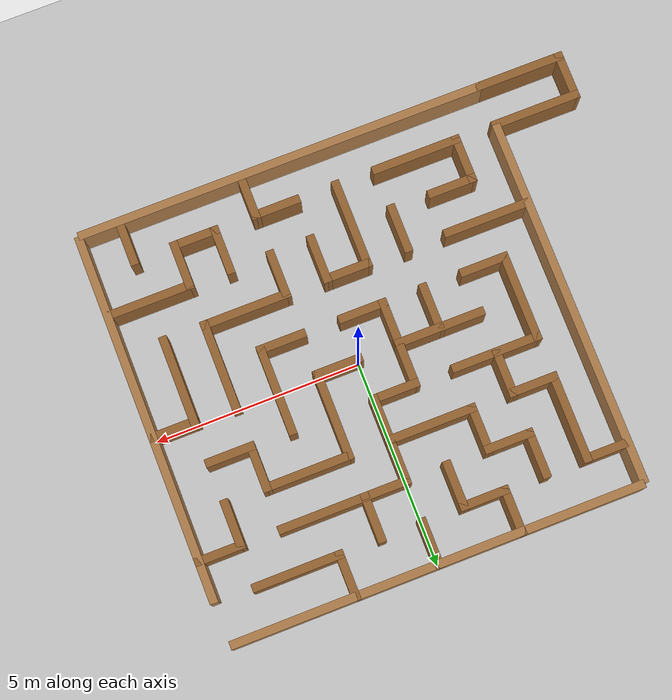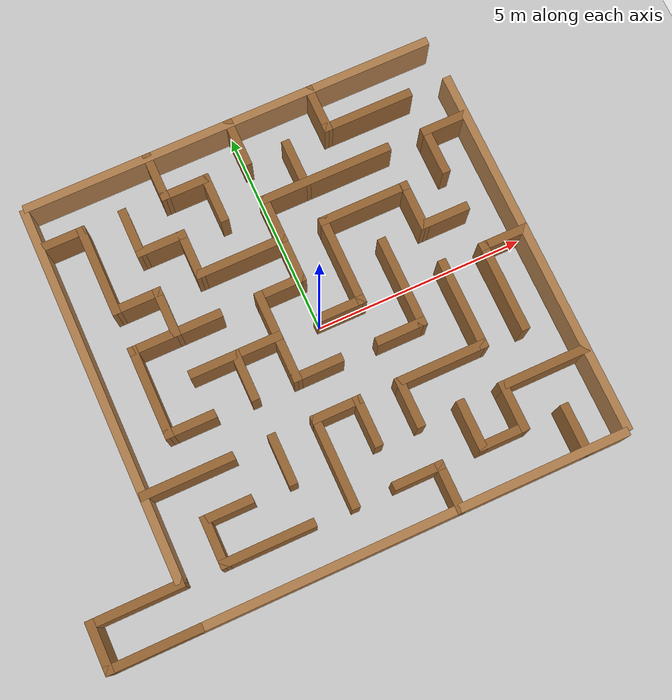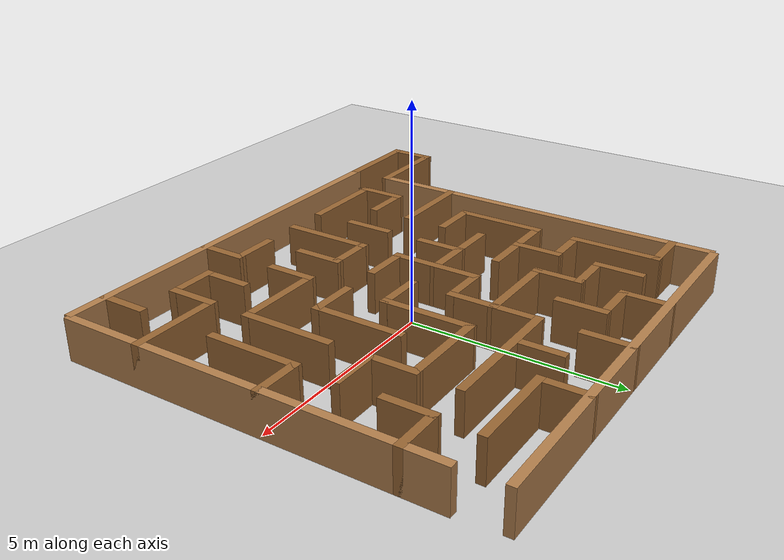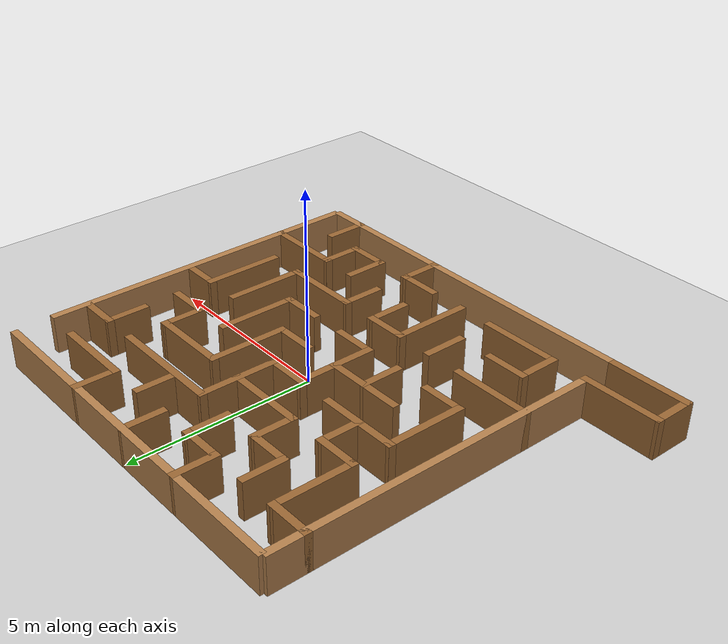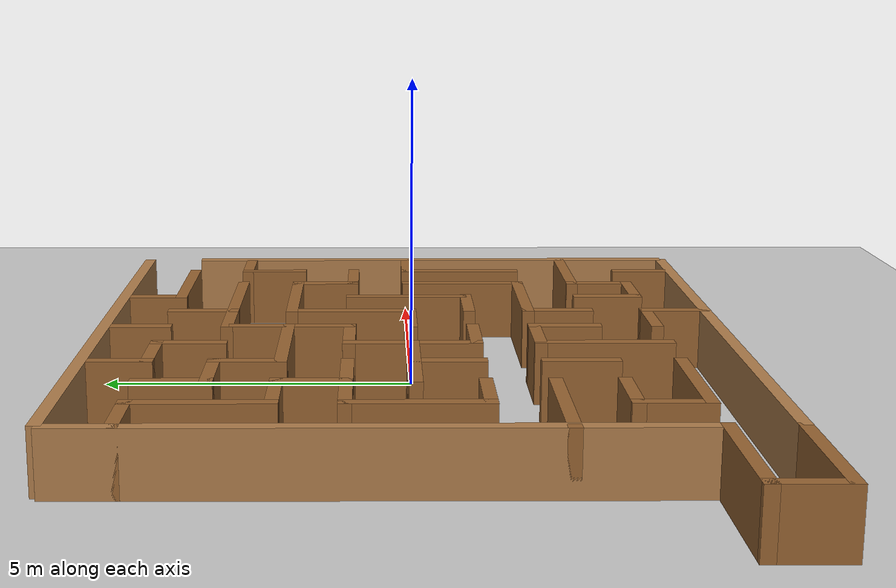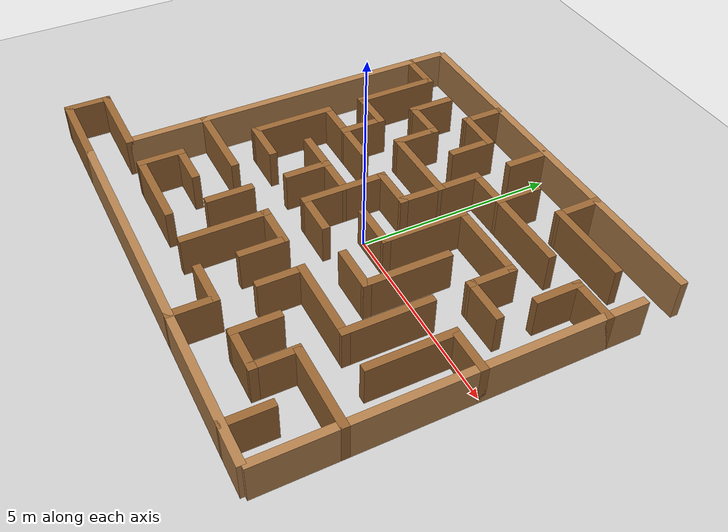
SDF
<?xml version="1.0" ?>
<sdf version="1.8">
  <world name="maze_world">
    <!-- System plugins required for Gazebo Harmonic -->
    <plugin filename="gz-sim-physics-system" name="gz::sim::systems::Physics"/>
    <plugin filename="gz-sim-user-commands-system" name="gz::sim::systems::UserCommands"/>
    <plugin filename="gz-sim-scene-broadcaster-system" name="gz::sim::systems::SceneBroadcaster"/>
    <plugin filename="gz-sim-sensors-system" name="gz::sim::systems::Sensors"/>

    <physics name="1ms" type="ignored">
      <max_step_size>0.001</max_step_size>
      <real_time_factor>1.0</real_time_factor>
      <real_time_update_rate>1.0</real_time_update_rate>
    </physics>

    <!-- Lighting -->
    <light type="directional" name="sun">
      <cast_shadows>true</cast_shadows>
      <pose>0 0 10 0 0 0</pose>
      <diffuse>0.8 0.8 0.8 1</diffuse>
      <specular>0.2 0.2 0.2 1</specular>
      <attenuation>
        <range>1000</range>
        <constant>0.9</constant>
        <linear>0.01</linear>
        <quadratic>0.001</quadratic>
      </attenuation>
      <direction>-0.5 0.1 -0.9</direction>
    </light>

    <!-- Ground plane -->
    <model name="ground_plane">
      <static>true</static>
      <link name="link">
        <collision name="collision">
          <geometry>
            <plane>
              <normal>0 0 1</normal>
              <size>20 20</size>
            </plane>
          </geometry>
        </collision>
        <visual name="visual">
          <geometry>
            <plane>
              <normal>0 0 1</normal>
              <size>20 20</size>
            </plane>
          </geometry>
          <material>
            <ambient>0.5 0.5 0.5 1</ambient>
            <diffuse>0.8 0.8 0.8 1</diffuse>
          </material>
        </visual>
      </link>
    </model>

    <!-- Maze walls - Outer boundary -->
    <model name="wall_north">
      <pose>0 5 0.5 0 0 0</pose>
      <static>true</static>
      <link name="link">
        <collision name="collision">
          <geometry>
            <box><size>10 0.2 1</size></box>
          </geometry>
        </collision>
        <visual name="visual">
          <geometry>
            <box><size>10 0.2 1</size></box>
          </geometry>
          <material>
            <ambient>0.7 0.5 0.3 1</ambient>
            <diffuse>0.7 0.5 0.3 1</diffuse>
          </material>
        </visual>
      </link>
    </model>

    <model name="wall_south">
      <pose>0 -5 0.5 0 0 0</pose>
      <static>true</static>
      <link name="link">
        <collision name="collision">
          <geometry>
            <box><size>10 0.2 1</size></box>
          </geometry>
        </collision>
        <visual name="visual">
          <geometry>
            <box><size>10 0.2 1</size></box>
          </geometry>
          <material>
            <ambient>0.7 0.5 0.3 1</ambient>
            <diffuse>0.7 0.5 0.3 1</diffuse>
          </material>
        </visual>
      </link>
    </model>

    <model name="wall_east">
      <pose>5 -0.5 0.5 0 0 0</pose>
      <static>true</static>
      <link name="link">
        <collision name="collision">
          <geometry>
            <box><size>0.2 9 1</size></box>
          </geometry>
        </collision>
        <visual name="visual">
          <geometry>
            <box><size>0.2 9 1</size></box>
          </geometry>
          <material>
            <ambient>0.7 0.5 0.3 1</ambient>
            <diffuse>0.7 0.5 0.3 1</diffuse>
          </material>
        </visual>
      </link>
    </model>

    <model name="wall_west">
      <pose>-5 0.5 0.5 0 0 0</pose>
      <static>true</static>
      <link name="link">
        <collision name="collision">
          <geometry>
            <box><size>0.2 9 1</size></box>
          </geometry>
        </collision>
        <visual name="visual">
          <geometry>
            <box><size>0.2 9 1</size></box>
          </geometry>
          <material>
            <ambient>0.7 0.5 0.3 1</ambient>
            <diffuse>0.7 0.5 0.3 1</diffuse>
          </material>
        </visual>
      </link>
    </model>

        <!--Custom Maze -->
    <model name="maze_wall_1">
      <pose>-4 -3.5 0.5 0 0 1.57</pose>
      <static>true</static>
      <link name="link">
        <collision name="collision">
          <geometry>
            <box><size>1.2 0.2 1</size></box>
          </geometry>
        </collision>
        <visual name="visual">
          <geometry>
            <box><size>1.2 0.2 1</size></box>
          </geometry>
          <material>
            <ambient>0.6 0.4 0.2 1</ambient>
            <diffuse>0.6 0.4 0.2 1</diffuse>
          </material>
        </visual>
      </link>
    </model>

    <model name="maze_wall_2">
      <pose>-3 -4 0.5 0 0 0</pose>
      <static>true</static>
      <link name="link">
        <collision name="collision">
          <geometry>
            <box><size>2.2 0.2 1</size></box>
          </geometry>
        </collision>
        <visual name="visual">
          <geometry>
            <box><size>2.2 0.2 1</size></box>
          </geometry>
          <material>
            <ambient>0.6 0.4 0.2 1</ambient>
            <diffuse>0.6 0.4 0.2 1</diffuse>
          </material>
        </visual>
      </link>
    </model>

    <model name="maze_wall_3">
      <pose>-3.5 -3 0.5 0 0 0</pose>
      <static>true</static>
      <link name="link">
        <collision name="collision">
          <geometry>
            <box><size>1.2 0.2 1</size></box>
          </geometry>
        </collision>
        <visual name="visual">
          <geometry>
            <box><size>1.2 0.2 1</size></box>
          </geometry>
          <material>
            <ambient>0.6 0.4 0.2 1</ambient>
            <diffuse>0.6 0.4 0.2 1</diffuse>
          </material>
        </visual>
      </link>
    </model>

    <model name="maze_wall_4">
      <pose>-4 -2 0.5 0 0 0</pose>
      <static>true</static>
      <link name="link">
        <collision name="collision">
          <geometry>
            <box><size>2.2 0.2 1</size></box>
          </geometry>
        </collision>
        <visual name="visual">
          <geometry>
            <box><size>2.2 0.2 1</size></box>
          </geometry>
          <material>
            <ambient>0.6 0.4 0.2 1</ambient>
            <diffuse>0.6 0.4 0.2 1</diffuse>
          </material>
        </visual>
      </link>
    </model>

    <model name="maze_wall_5">
      <pose>-3.5 -1 0.5 0 0 0</pose>
      <static>true</static>
      <link name="link">
        <collision name="collision">
          <geometry>
            <box><size>1.2 0.2 1</size></box>
          </geometry>
        </collision>
        <visual name="visual">
          <geometry>
            <box><size>1.2 0.2 1</size></box>
          </geometry>
          <material>
            <ambient>0.6 0.4 0.2 1</ambient>
            <diffuse>0.6 0.4 0.2 1</diffuse>
          </material>
        </visual>
      </link>
    </model>

    <model name="maze_wall_6">
      <pose>-3 1 0.5 0 0 0</pose>
      <static>true</static>
      <link name="link">
        <collision name="collision">
          <geometry>
            <box><size>2.2 0.2 1</size></box>
          </geometry>
        </collision>
        <visual name="visual">
          <geometry>
            <box><size>2.2 0.2 1</size></box>
          </geometry>
          <material>
            <ambient>0.6 0.4 0.2 1</ambient>
            <diffuse>0.6 0.4 0.2 1</diffuse>
          </material>
        </visual>
      </link>
    </model>

    <model name="maze_wall_7">
      <pose>-3.5 2 0.5 0 0 0</pose>
      <static>true</static>
      <link name="link">
        <collision name="collision">
          <geometry>
            <box><size>1.2 0.2 1</size></box>
          </geometry>
        </collision>
        <visual name="visual">
          <geometry>
            <box><size>1.2 0.2 1</size></box>
          </geometry>
          <material>
            <ambient>0.6 0.4 0.2 1</ambient>
            <diffuse>0.6 0.4 0.2 1</diffuse>
          </material>
        </visual>
      </link>
    </model>

    <model name="maze_wall_8">
      <pose>-4.5 4 0.5 0 0 0</pose>
      <static>true</static>
      <link name="link">
        <collision name="collision">
          <geometry>
            <box><size>1.2 0.2 1</size></box>
          </geometry>
        </collision>
        <visual name="visual">
          <geometry>
            <box><size>1.2 0.2 1</size></box>
          </geometry>
          <material>
            <ambient>0.6 0.4 0.2 1</ambient>
            <diffuse>0.6 0.4 0.2 1</diffuse>
          </material>
        </visual>
      </link>
    </model>

    <model name="maze_wall_9">
      <pose>-2.5 3 0.5 0 0 0</pose>
      <static>true</static>
      <link name="link">
        <collision name="collision">
          <geometry>
            <box><size>1.2 0.2 1</size></box>
          </geometry>
        </collision>
        <visual name="visual">
          <geometry>
            <box><size>1.2 0.2 1</size></box>
          </geometry>
          <material>
            <ambient>0.6 0.4 0.2 1</ambient>
            <diffuse>0.6 0.4 0.2 1</diffuse>
          </material>
        </visual>
      </link>
    </model>

    <model name="maze_wall_10">
      <pose>-1.5 4 0.5 0 0 0</pose>
      <static>true</static>
      <link name="link">
        <collision name="collision">
          <geometry>
            <box><size>1.2 0.2 1</size></box>
          </geometry>
        </collision>
        <visual name="visual">
          <geometry>
            <box><size>1.2 0.2 1</size></box>
          </geometry>
          <material>
            <ambient>0.6 0.4 0.2 1</ambient>
            <diffuse>0.6 0.4 0.2 1</diffuse>
          </material>
        </visual>
      </link>
    </model>

    <model name="maze_wall_11">
      <pose>-2 0 0.5 0 0 0</pose>
      <static>true</static>
      <link name="link">
        <collision name="collision">
          <geometry>
            <box><size>2.2 0.2 1</size></box>
          </geometry>
        </collision>
        <visual name="visual">
          <geometry>
            <box><size>2.2 0.2 1</size></box>
          </geometry>
          <material>
            <ambient>0.6 0.4 0.2 1</ambient>
            <diffuse>0.6 0.4 0.2 1</diffuse>
          </material>
        </visual>
      </link>
    </model>

    <model name="maze_wall_12">
      <pose>-1 2 0.5 0 0 0</pose>
      <static>true</static>
      <link name="link">
        <collision name="collision">
          <geometry>
            <box><size>2.2 0.2 1</size></box>
          </geometry>
        </collision>
        <visual name="visual">
          <geometry>
            <box><size>2.2 0.2 1</size></box>
          </geometry>
          <material>
            <ambient>0.6 0.4 0.2 1</ambient>
            <diffuse>0.6 0.4 0.2 1</diffuse>
          </material>
        </visual>
      </link>
    </model>

    <model name="maze_wall_13">
      <pose>-0.5 1 0.5 0 0 0</pose>
      <static>true</static>
      <link name="link">
        <collision name="collision">
          <geometry>
            <box><size>1.2 0.2 1</size></box>
          </geometry>
        </collision>
        <visual name="visual">
          <geometry>
            <box><size>1.2 0.2 1</size></box>
          </geometry>
          <material>
            <ambient>0.6 0.4 0.2 1</ambient>
            <diffuse>0.6 0.4 0.2 1</diffuse>
          </material>
        </visual>
      </link>
    </model>

    <model name="maze_wall_14">
      <pose>-0.5 -1 0.5 0 0 0</pose>
      <static>true</static>
      <link name="link">
        <collision name="collision">
          <geometry>
            <box><size>1.2 0.2 1</size></box>
          </geometry>
        </collision>
        <visual name="visual">
          <geometry>
            <box><size>1.2 0.2 1</size></box>
          </geometry>
          <material>
            <ambient>0.6 0.4 0.2 1</ambient>
            <diffuse>0.6 0.4 0.2 1</diffuse>
          </material>
        </visual>
      </link>
    </model>

    <model name="maze_wall_15">
      <pose>0.5 0 0.5 0 0 0</pose>
      <static>true</static>
      <link name="link">
        <collision name="collision">
          <geometry>
            <box><size>1.2 0.2 1</size></box>
          </geometry>
        </collision>
        <visual name="visual">
          <geometry>
            <box><size>1.2 0.2 1</size></box>
          </geometry>
          <material>
            <ambient>0.6 0.4 0.2 1</ambient>
            <diffuse>0.6 0.4 0.2 1</diffuse>
          </material>
        </visual>
      </link>
    </model>

    <model name="maze_wall_16">
      <pose>-0.5 -2 0.5 0 0 0</pose>
      <static>true</static>
      <link name="link">
        <collision name="collision">
          <geometry>
            <box><size>1.2 0.2 1</size></box>
          </geometry>
        </collision>
        <visual name="visual">
          <geometry>
            <box><size>1.2 0.2 1</size></box>
          </geometry>
          <material>
            <ambient>0.6 0.4 0.2 1</ambient>
            <diffuse>0.6 0.4 0.2 1</diffuse>
          </material>
        </visual>
      </link>
    </model>

    <model name="maze_wall_17">
      <pose>0.5 -4 0.5 0 0 0</pose>
      <static>true</static>
      <link name="link">
        <collision name="collision">
          <geometry>
            <box><size>1.2 0.2 1</size></box>
          </geometry>
        </collision>
        <visual name="visual">
          <geometry>
            <box><size>1.2 0.2 1</size></box>
          </geometry>
          <material>
            <ambient>0.6 0.4 0.2 1</ambient>
            <diffuse>0.6 0.4 0.2 1</diffuse>
          </material>
        </visual>
      </link>
    </model>

    <model name="maze_wall_18">
      <pose>1.5 -1 0.5 0 0 0</pose>
      <static>true</static>
      <link name="link">
        <collision name="collision">
          <geometry>
            <box><size>1.2 0.2 1</size></box>
          </geometry>
        </collision>
        <visual name="visual">
          <geometry>
            <box><size>1.2 0.2 1</size></box>
          </geometry>
          <material>
            <ambient>0.6 0.4 0.2 1</ambient>
            <diffuse>0.6 0.4 0.2 1</diffuse>
          </material>
        </visual>
      </link>
    </model>

    <model name="maze_wall_19">
      <pose>2.5 -4 0.5 0 0 0</pose>
      <static>true</static>
      <link name="link">
        <collision name="collision">
          <geometry>
            <box><size>1.2 0.2 1</size></box>
          </geometry>
        </collision>
        <visual name="visual">
          <geometry>
            <box><size>1.2 0.2 1</size></box>
          </geometry>
          <material>
            <ambient>0.6 0.4 0.2 1</ambient>
            <diffuse>0.6 0.4 0.2 1</diffuse>
          </material>
        </visual>
      </link>
    </model>

    <model name="maze_wall_20">
      <pose>3.5 1 0.5 0 0 0</pose>
      <static>true</static>
      <link name="link">
        <collision name="collision">
          <geometry>
            <box><size>1.2 0.2 1</size></box>
          </geometry>
        </collision>
        <visual name="visual">
          <geometry>
            <box><size>1.2 0.2 1</size></box>
          </geometry>
          <material>
            <ambient>0.6 0.4 0.2 1</ambient>
            <diffuse>0.6 0.4 0.2 1</diffuse>
          </material>
        </visual>
      </link>
    </model>

    <model name="maze_wall_21">
      <pose>4.5 0 0.5 0 0 0</pose>
      <static>true</static>
      <link name="link">
        <collision name="collision">
          <geometry>
            <box><size>1.2 0.2 1</size></box>
          </geometry>
        </collision>
        <visual name="visual">
          <geometry>
            <box><size>1.2 0.2 1</size></box>
          </geometry>
          <material>
            <ambient>0.6 0.4 0.2 1</ambient>
            <diffuse>0.6 0.4 0.2 1</diffuse>
          </material>
        </visual>
      </link>
    </model>

    <model name="maze_wall_22">
      <pose>4.5 3 0.5 0 0 0</pose>
      <static>true</static>
      <link name="link">
        <collision name="collision">
          <geometry>
            <box><size>1.2 0.2 1</size></box>
          </geometry>
        </collision>
        <visual name="visual">
          <geometry>
            <box><size>1.2 0.2 1</size></box>
          </geometry>
          <material>
            <ambient>0.6 0.4 0.2 1</ambient>
            <diffuse>0.6 0.4 0.2 1</diffuse>
          </material>
        </visual>
      </link>
    </model>

    <model name="maze_wall_23">
      <pose>2 -2 0.5 0 0 0</pose>
      <static>true</static>
      <link name="link">
        <collision name="collision">
          <geometry>
            <box><size>2.2 0.2 1</size></box>
          </geometry>
        </collision>
        <visual name="visual">
          <geometry>
            <box><size>2.2 0.2 1</size></box>
          </geometry>
          <material>
            <ambient>0.6 0.4 0.2 1</ambient>
            <diffuse>0.6 0.4 0.2 1</diffuse>
          </material>
        </visual>
      </link>
    </model>

    <model name="maze_wall_24">
      <pose>4 -3 0.5 0 0 0</pose>
      <static>true</static>
      <link name="link">
        <collision name="collision">
          <geometry>
            <box><size>2.2 0.2 1</size></box>
          </geometry>
        </collision>
        <visual name="visual">
          <geometry>
            <box><size>2.2 0.2 1</size></box>
          </geometry>
          <material>
            <ambient>0.6 0.4 0.2 1</ambient>
            <diffuse>0.6 0.4 0.2 1</diffuse>
          </material>
        </visual>
      </link>
    </model>

    <model name="maze_wall_25">
      <pose>3 4 0.5 0 0 0</pose>
      <static>true</static>
      <link name="link">
        <collision name="collision">
          <geometry>
            <box><size>2.2 0.2 1</size></box>
          </geometry>
        </collision>
        <visual name="visual">
          <geometry>
            <box><size>2.2 0.2 1</size></box>
          </geometry>
          <material>
            <ambient>0.6 0.4 0.2 1</ambient>
            <diffuse>0.6 0.4 0.2 1</diffuse>
          </material>
        </visual>
      </link>
    </model>

    <model name="maze_wall_26">
      <pose>2 2 0.5 0 0 0</pose>
      <static>true</static>
      <link name="link">
        <collision name="collision">
          <geometry>
            <box><size>2.2 0.2 1</size></box>
          </geometry>
        </collision>
        <visual name="visual">
          <geometry>
            <box><size>2.2 0.2 1</size></box>
          </geometry>
          <material>
            <ambient>0.6 0.4 0.2 1</ambient>
            <diffuse>0.6 0.4 0.2 1</diffuse>
          </material>
        </visual>
      </link>
    </model>

    <model name="maze_wall_27">
      <pose>1.5 3 0.5 0 0 0</pose>
      <static>true</static>
      <link name="link">
        <collision name="collision">
          <geometry>
            <box><size>3.2 0.2 1</size></box>
          </geometry>
        </collision>
        <visual name="visual">
          <geometry>
            <box><size>3.2 0.2 1</size></box>
          </geometry>
          <material>
            <ambient>0.6 0.4 0.2 1</ambient>
            <diffuse>0.6 0.4 0.2 1</diffuse>
          </material>
        </visual>
      </link>
    </model>

    <model name="maze_wall_28">
      <pose>-2 -2.5 0.5 0 0 1.57</pose>
      <static>true</static>
      <link name="link">
        <collision name="collision">
          <geometry>
            <box><size>1.2 0.2 1</size></box>
          </geometry>
        </collision>
        <visual name="visual">
          <geometry>
            <box><size>1.2 0.2 1</size></box>
          </geometry>
          <material>
            <ambient>0.6 0.4 0.2 1</ambient>
            <diffuse>0.6 0.4 0.2 1</diffuse>
          </material>
        </visual>
      </link>
    </model>

    <model name="maze_wall_29">
      <pose>-2 -0.5 0.5 0 0 1.57</pose>
      <static>true</static>
      <link name="link">
        <collision name="collision">
          <geometry>
            <box><size>1.2 0.2 1</size></box>
          </geometry>
        </collision>
        <visual name="visual">
          <geometry>
            <box><size>1.2 0.2 1</size></box>
          </geometry>
          <material>
            <ambient>0.6 0.4 0.2 1</ambient>
            <diffuse>0.6 0.4 0.2 1</diffuse>
          </material>
        </visual>
      </link>
    </model>

    <model name="maze_wall_30">
      <pose>-2 -0.5 0.5 0 0 1.57</pose>
      <static>true</static>
      <link name="link">
        <collision name="collision">
          <geometry>
            <box><size>1.2 0.2 1</size></box>
          </geometry>
        </collision>
        <visual name="visual">
          <geometry>
            <box><size>1.2 0.2 1</size></box>
          </geometry>
          <material>
            <ambient>0.6 0.4 0.2 1</ambient>
            <diffuse>0.6 0.4 0.2 1</diffuse>
          </material>
        </visual>
      </link>
    </model>

    <model name="maze_wall_31">
      <pose>-3 1.5 0.5 0 0 1.57</pose>
      <static>true</static>
      <link name="link">
        <collision name="collision">
          <geometry>
            <box><size>1.2 0.2 1</size></box>
          </geometry>
        </collision>
        <visual name="visual">
          <geometry>
            <box><size>1.2 0.2 1</size></box>
          </geometry>
          <material>
            <ambient>0.6 0.4 0.2 1</ambient>
            <diffuse>0.6 0.4 0.2 1</diffuse>
          </material>
        </visual>
      </link>
    </model>

    <model name="maze_wall_32">
      <pose>-2 2.5 0.5 0 0 1.57</pose>
      <static>true</static>
      <link name="link">
        <collision name="collision">
          <geometry>
            <box><size>1.2 0.2 1</size></box>
          </geometry>
        </collision>
        <visual name="visual">
          <geometry>
            <box><size>1.2 0.2 1</size></box>
          </geometry>
          <material>
            <ambient>0.6 0.4 0.2 1</ambient>
            <diffuse>0.6 0.4 0.2 1</diffuse>
          </material>
        </visual>
      </link>
    </model>

    <model name="maze_wall_33">
      <pose>-3 3.5 0.5 0 0 1.57</pose>
      <static>true</static>
      <link name="link">
        <collision name="collision">
          <geometry>
            <box><size>1.2 0.2 1</size></box>
          </geometry>
        </collision>
        <visual name="visual">
          <geometry>
            <box><size>1.2 0.2 1</size></box>
          </geometry>
          <material>
            <ambient>0.6 0.4 0.2 1</ambient>
            <diffuse>0.6 0.4 0.2 1</diffuse>
          </material>
        </visual>
      </link>
    </model>

    <model name="maze_wall_34">
      <pose>-2 4.5 0.5 0 0 1.57</pose>
      <static>true</static>
      <link name="link">
        <collision name="collision">
          <geometry>
            <box><size>1.2 0.2 1</size></box>
          </geometry>
        </collision>
        <visual name="visual">
          <geometry>
            <box><size>1.2 0.2 1</size></box>
          </geometry>
          <material>
            <ambient>0.6 0.4 0.2 1</ambient>
            <diffuse>0.6 0.4 0.2 1</diffuse>
          </material>
        </visual>
      </link>
    </model>

    <model name="maze_wall_35">
      <pose>-1 3.5 0.5 0 0 1.57</pose>
      <static>true</static>
      <link name="link">
        <collision name="collision">
          <geometry>
            <box><size>1.2 0.2 1</size></box>
          </geometry>
        </collision>
        <visual name="visual">
          <geometry>
            <box><size>1.2 0.2 1</size></box>
          </geometry>
          <material>
            <ambient>0.6 0.4 0.2 1</ambient>
            <diffuse>0.6 0.4 0.2 1</diffuse>
          </material>
        </visual>
      </link>
    </model>

    <model name="maze_wall_36">
      <pose>0 4.5 0.5 0 0 1.57</pose>
      <static>true</static>
      <link name="link">
        <collision name="collision">
          <geometry>
            <box><size>1.2 0.2 1</size></box>
          </geometry>
        </collision>
        <visual name="visual">
          <geometry>
            <box><size>1.2 0.2 1</size></box>
          </geometry>
          <material>
            <ambient>0.6 0.4 0.2 1</ambient>
            <diffuse>0.6 0.4 0.2 1</diffuse>
          </material>
        </visual>
      </link>
    </model>

    <model name="maze_wall_37">
      <pose>1 3.5 0.5 0 0 1.57</pose>
      <static>true</static>
      <link name="link">
        <collision name="collision">
          <geometry>
            <box><size>1.2 0.2 1</size></box>
          </geometry>
        </collision>
        <visual name="visual">
          <geometry>
            <box><size>1.2 0.2 1</size></box>
          </geometry>
          <material>
            <ambient>0.6 0.4 0.2 1</ambient>
            <diffuse>0.6 0.4 0.2 1</diffuse>
          </material>
        </visual>
      </link>
    </model>

    <model name="maze_wall_38">
      <pose>2 4.5 0.5 0 0 1.57</pose>
      <static>true</static>
      <link name="link">
        <collision name="collision">
          <geometry>
            <box><size>1.2 0.2 1</size></box>
          </geometry>
        </collision>
        <visual name="visual">
          <geometry>
            <box><size>1.2 0.2 1</size></box>
          </geometry>
          <material>
            <ambient>0.6 0.4 0.2 1</ambient>
            <diffuse>0.6 0.4 0.2 1</diffuse>
          </material>
        </visual>
      </link>
    </model>

        <!-- Used to be 39 -->

    <model name="maze_wall_40">
      <pose>3 1.5 0.5 0 0 1.57</pose>
      <static>true</static>
      <link name="link">
        <collision name="collision">
          <geometry>
            <box><size>1.2 0.2 1</size></box>
          </geometry>
        </collision>
        <visual name="visual">
          <geometry>
            <box><size>1.2 0.2 1</size></box>
          </geometry>
          <material>
            <ambient>0.6 0.4 0.2 1</ambient>
            <diffuse>0.6 0.4 0.2 1</diffuse>
          </material>
        </visual>
      </link>
    </model>

    <model name="maze_wall_41">
      <pose>4 2.5 0.5 0 0 1.57</pose>
      <static>true</static>
      <link name="link">
        <collision name="collision">
          <geometry>
            <box><size>1.2 0.2 1</size></box>
          </geometry>
        </collision>
        <visual name="visual">
          <geometry>
            <box><size>1.2 0.2 1</size></box>
          </geometry>
          <material>
            <ambient>0.6 0.4 0.2 1</ambient>
            <diffuse>0.6 0.4 0.2 1</diffuse>
          </material>
        </visual>
      </link>
    </model>

    <model name="maze_wall_42">
      <pose>0 -2.5 0.5 0 0 1.57</pose>
      <static>true</static>
      <link name="link">
        <collision name="collision">
          <geometry>
            <box><size>1.2 0.2 1</size></box>
          </geometry>
        </collision>
        <visual name="visual">
          <geometry>
            <box><size>1.2 0.2 1</size></box>
          </geometry>
          <material>
            <ambient>0.6 0.4 0.2 1</ambient>
            <diffuse>0.6 0.4 0.2 1</diffuse>
          </material>
        </visual>
      </link>
    </model>

    <model name="maze_wall_43">
      <pose>1 -2.5 0.5 0 0 1.57</pose>
      <static>true</static>
      <link name="link">
        <collision name="collision">
          <geometry>
            <box><size>1.2 0.2 1</size></box>
          </geometry>
        </collision>
        <visual name="visual">
          <geometry>
            <box><size>1.2 0.2 1</size></box>
          </geometry>
          <material>
            <ambient>0.6 0.4 0.2 1</ambient>
            <diffuse>0.6 0.4 0.2 1</diffuse>
          </material>
        </visual>
      </link>
    </model>

    <model name="maze_wall_44">
      <pose>1 -4.5 0.5 0 0 1.57</pose>
      <static>true</static>
      <link name="link">
        <collision name="collision">
          <geometry>
            <box><size>1.2 0.2 1</size></box>
          </geometry>
        </collision>
        <visual name="visual">
          <geometry>
            <box><size>1.2 0.2 1</size></box>
          </geometry>
          <material>
            <ambient>0.6 0.4 0.2 1</ambient>
            <diffuse>0.6 0.4 0.2 1</diffuse>
          </material>
        </visual>
      </link>
    </model>

    <model name="maze_wall_45">
      <pose>4 -4.5 0.5 0 0 1.57</pose>
      <static>true</static>
      <link name="link">
        <collision name="collision">
          <geometry>
            <box><size>1.2 0.2 1</size></box>
          </geometry>
        </collision>
        <visual name="visual">
          <geometry>
            <box><size>1.2 0.2 1</size></box>
          </geometry>
          <material>
            <ambient>0.6 0.4 0.2 1</ambient>
            <diffuse>0.6 0.4 0.2 1</diffuse>
          </material>
        </visual>
      </link>
    </model>

    <model name="maze_wall_46">
      <pose>2 -3.5 0.5 0 0 1.57</pose>
      <static>true</static>
      <link name="link">
        <collision name="collision">
          <geometry>
            <box><size>1.2 0.2 1</size></box>
          </geometry>
        </collision>
        <visual name="visual">
          <geometry>
            <box><size>1.2 0.2 1</size></box>
          </geometry>
          <material>
            <ambient>0.6 0.4 0.2 1</ambient>
            <diffuse>0.6 0.4 0.2 1</diffuse>
          </material>
        </visual>
      </link>
    </model>

    <model name="maze_wall_47">
      <pose>3 -3.5 0.5 0 0 1.57</pose>
      <static>true</static>
      <link name="link">
        <collision name="collision">
          <geometry>
            <box><size>1.2 0.2 1</size></box>
          </geometry>
        </collision>
        <visual name="visual">
          <geometry>
            <box><size>1.2 0.2 1</size></box>
          </geometry>
          <material>
            <ambient>0.6 0.4 0.2 1</ambient>
            <diffuse>0.6 0.4 0.2 1</diffuse>
          </material>
        </visual>
      </link>
    </model>

    <model name="maze_wall_48">
      <pose>-4 0 0.5 0 0 1.57</pose>
      <static>true</static>
      <link name="link">
        <collision name="collision">
          <geometry>
            <box><size>2.2 0.2 1</size></box>
          </geometry>
        </collision>
        <visual name="visual">
          <geometry>
            <box><size>2.2 0.2 1</size></box>
          </geometry>
          <material>
            <ambient>0.6 0.4 0.2 1</ambient>
            <diffuse>0.6 0.4 0.2 1</diffuse>
          </material>
        </visual>
      </link>
    </model>

    <model name="maze_wall_49">
      <pose>-4 3 0.5 0 0 1.57</pose>
      <static>true</static>
      <link name="link">
        <collision name="collision">
          <geometry>
            <box><size>2.2 0.2 1</size></box>
          </geometry>
        </collision>
        <visual name="visual">
          <geometry>
            <box><size>2.2 0.2 1</size></box>
          </geometry>
          <material>
            <ambient>0.6 0.4 0.2 1</ambient>
            <diffuse>0.6 0.4 0.2 1</diffuse>
          </material>
        </visual>
      </link>
    </model>

    <model name="maze_wall_50">
      <pose>-1 0 0.5 0 0 1.57</pose>
      <static>true</static>
      <link name="link">
        <collision name="collision">
          <geometry>
            <box><size>2.2 0.2 1</size></box>
          </geometry>
        </collision>
        <visual name="visual">
          <geometry>
            <box><size>2.2 0.2 1</size></box>
          </geometry>
          <material>
            <ambient>0.6 0.4 0.2 1</ambient>
            <diffuse>0.6 0.4 0.2 1</diffuse>
          </material>
        </visual>
      </link>
    </model>

    <model name="maze_wall_51">
      <pose>1 1 0.5 0 0 1.57</pose>
      <static>true</static>
      <link name="link">
        <collision name="collision">
          <geometry>
            <box><size>2.2 0.2 1</size></box>
          </geometry>
        </collision>
        <visual name="visual">
          <geometry>
            <box><size>2.2 0.2 1</size></box>
          </geometry>
          <material>
            <ambient>0.6 0.4 0.2 1</ambient>
            <diffuse>0.6 0.4 0.2 1</diffuse>
          </material>
        </visual>
      </link>
    </model>

    <model name="maze_wall_52">
      <pose>0 2 0.5 0 0 1.57</pose>
      <static>true</static>
      <link name="link">
        <collision name="collision">
          <geometry>
            <box><size>2.2 0.2 1</size></box>
          </geometry>
        </collision>
        <visual name="visual">
          <geometry>
            <box><size>2.2 0.2 1</size></box>
          </geometry>
          <material>
            <ambient>0.6 0.4 0.2 1</ambient>
            <diffuse>0.6 0.4 0.2 1</diffuse>
          </material>
        </visual>
      </link>
    </model>

    <model name="maze_wall_53">
      <pose>2 0 0.5 0 0 1.57</pose>
      <static>true</static>
      <link name="link">
        <collision name="collision">
          <geometry>
            <box><size>2.2 0.2 1</size></box>
          </geometry>
        </collision>
        <visual name="visual">
          <geometry>
            <box><size>2.2 0.2 1</size></box>
          </geometry>
          <material>
            <ambient>0.6 0.4 0.2 1</ambient>
            <diffuse>0.6 0.4 0.2 1</diffuse>
          </material>
        </visual>
      </link>
    </model>

    <model name="maze_wall_54">
      <pose>3 -1 0.5 0 0 1.57</pose>
      <static>true</static>
      <link name="link">
        <collision name="collision">
          <geometry>
            <box><size>2.2 0.2 1</size></box>
          </geometry>
        </collision>
        <visual name="visual">
          <geometry>
            <box><size>2.2 0.2 1</size></box>
          </geometry>
          <material>
            <ambient>0.6 0.4 0.2 1</ambient>
            <diffuse>0.6 0.4 0.2 1</diffuse>
          </material>
        </visual>
      </link>
    </model>

    <model name="maze_wall_55">
      <pose>4 -1 0.5 0 0 1.57</pose>
      <static>true</static>
      <link name="link">
        <collision name="collision">
          <geometry>
            <box><size>2.2 0.2 1</size></box>
          </geometry>
        </collision>
        <visual name="visual">
          <geometry>
            <box><size>2.2 0.2 1</size></box>
          </geometry>
          <material>
            <ambient>0.6 0.4 0.2 1</ambient>
            <diffuse>0.6 0.4 0.2 1</diffuse>
          </material>
        </visual>
      </link>
    </model>

    <model name="maze_wall_56">
      <pose>-1 -3 0.5 0 0 1.57</pose>
      <static>true</static>
      <link name="link">
        <collision name="collision">
          <geometry>
            <box><size>2.2 0.2 1</size></box>
          </geometry>
        </collision>
        <visual name="visual">
          <geometry>
            <box><size>2.2 0.2 1</size></box>
          </geometry>
          <material>
            <ambient>0.6 0.4 0.2 1</ambient>
            <diffuse>0.6 0.4 0.2 1</diffuse>
          </material>
        </visual>
      </link>
    </model>

    <model name="maze_wall_57">
      <pose>-7 -4.5 0.5 0 0 1.57</pose>
      <static>true</static>
      <link name="link">
        <collision name="collision">
          <geometry>
            <box><size>1.2 0.2 1</size></box>
          </geometry>
        </collision>
        <visual name="visual">
          <geometry>
            <box><size>1.2 0.2 1</size></box>
          </geometry>
          <material>
            <ambient>0.6 0.4 0.2 1</ambient>
            <diffuse>0.6 0.4 0.2 1</diffuse>
          </material>
        </visual>
      </link>
    </model>

    <model name="maze_wall_58">
      <pose>-6 -4 0.5 0 0 0</pose>
      <static>true</static>
      <link name="link">
        <collision name="collision">
          <geometry>
            <box><size>2.2 0.2 1</size></box>
          </geometry>
        </collision>
        <visual name="visual">
          <geometry>
            <box><size>2.2 0.2 1</size></box>
          </geometry>
          <material>
            <ambient>0.6 0.4 0.2 1</ambient>
            <diffuse>0.6 0.4 0.2 1</diffuse>
          </material>
        </visual>
      </link>
    </model>

    <model name="maze_wall_59">
      <pose>-6 -5 0.5 0 0 0</pose>
      <static>true</static>
      <link name="link">
        <collision name="collision">
          <geometry>
            <box><size>2.2 0.2 1</size></box>
          </geometry>
        </collision>
        <visual name="visual">
          <geometry>
            <box><size>2.2 0.2 1</size></box>
          </geometry>
          <material>
            <ambient>0.6 0.4 0.2 1</ambient>
            <diffuse>0.6 0.4 0.2 1</diffuse>
          </material>
        </visual>
      </link>
    </model>

  </world>
</sdf>
